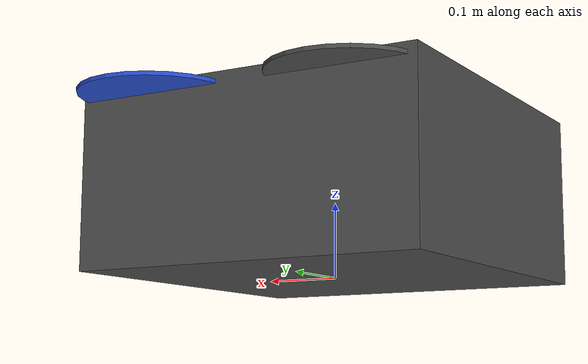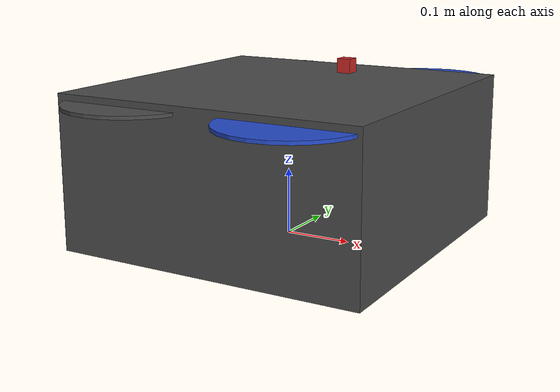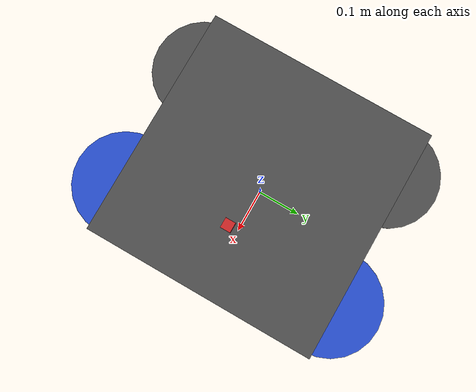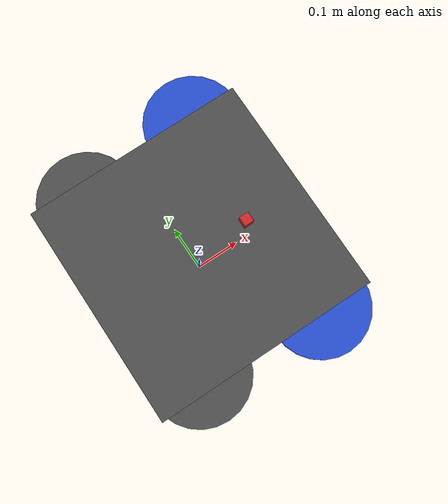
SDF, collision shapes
<?xml version='1.0'?>
<sdf version='1.5'>
  <model name='iris'>
    <pose>0 0 0.194923 0 0 0</pose>
    <link name="front_camera_link">
      <pose>0.1 -0.01 0.070 0 0 0</pose>
      <sensor name="front_camera" type="depth">
        <pose>0 0 0 0 0 0</pose> <!-- x y z roll pitch yaw，朝前 -->
        <camera>
          <horizontal_fov>2.0</horizontal_fov>
          <image>
            <width>640</width>
            <height>480</height>
          </image>
          <clip>
            <near>0.05</near>
            <far>50</far>
          </clip>
          <visualize>1</visualize>
        </camera>
        <always_on>1</always_on>
        <update_rate>30</update_rate>
        <visualize>1</visualize>
        <plugin name="front_camera_controller" filename="libgazebo_ros_depth_camera.so">
          <robotNamespace>roscam</robotNamespace>
          <alwaysOn>true</alwaysOn>
          <updateRate>0.0</updateRate>
          <cameraName>front_cam</cameraName>
          <imageTopicName>image_raw</imageTopicName>
          <cameraInfoTopicName>camera_info</cameraInfoTopicName>
          <frameName>/front_camera_link</frameName>
          <depthImageTopicName>depth/image_raw</depthImageTopicName>
          <pointCloudTopicName>depth/points</pointCloudTopicName>
          <hackBaseline>0.07</hackBaseline>
          <distortionK1>0.0</distortionK1>
          <distortionK2>0.0</distortionK2>
          <distortionK3>0.0</distortionK3>
          <distortionT1>0.0</distortionT1>
          <distortionT2>0.0</distortionT2>
        </plugin>
      </sensor>

      <inertial>
        <mass>0.0001</mass>  <!-- 小质量 -->
        <inertia>
          <ixx>0.00001</ixx>
          <ixy>0</ixy>
          <ixz>0</ixz>
          <iyy>0.00001</iyy>
          <iyz>0</iyz>
          <izz>0.00001</izz>
        </inertia>
      </inertial>

      <collision name="front_camera_collision">
        <geometry>
          <box>
            <size>0.02 0.02 0.02</size>  <!-- 小碰撞盒 -->
          </box>
        </geometry>
      </collision>
      <visual name="front_camera_visual">
        <geometry>
          <box>
            <size>0.02 0.02 0.02</size>
          </box>
        </geometry>
        <material>
          <script>
            <name>Gazebo/Red</name>
            <uri>file://media/materials/scripts/gazebo.material</uri>
          </script>
        </material>
      </visual>
    </link>
    <joint name="front_camera_joint" type="fixed">
      <parent>base_link</parent>
      <child>front_camera_link</child>
    </joint>

    <link name='base_link'>
      <velocity_decay>
        <linear>0.0</linear>
        <angular>0.0</angular>
      </velocity_decay>
      <inertial>
        <pose>0 0 0 0 0 0</pose>
        <mass>1.5</mass>
        <inertia>
          <ixx>0.008</ixx>
          <ixy>0</ixy>
          <ixz>0</ixz>
          <iyy>0.015</iyy>
          <iyz>0</iyz>
          <izz>0.017</izz>
        </inertia>
      </inertial>
      <collision name='base_link_collision'>
        <pose>0 0 -0.08 0 0 0</pose>
        <geometry>
          <box>
            <size>0.47 0.47 0.23</size>
          </box>
        </geometry>
        <surface>
          <contact>
            <ode>
              <max_vel>100.0</max_vel>
              <min_depth>0.001</min_depth>
            </ode>
          </contact>
          <friction>
            <ode>
              <mu>1000.0</mu>
              <mu2>1000.0</mu2>
            </ode>
          </friction>
        </surface>
      </collision>
      <visual name='base_link_visual'>
        <geometry>
          <mesh>
            <uri>model://iris_with_standoffs/meshes/iris.dae</uri>
          </mesh>
        </geometry>
        <material>
          <script>
            <name>Gazebo/DarkGrey</name>
            <uri>file://media/materials/scripts/gazebo.material</uri>
          </script>
        </material>
      </visual>

      <visual name='front_left_leg_visual'>
        <pose>0.123 0.22 -0.11 0 0 0</pose>
        <geometry>
          <cylinder>
            <radius>0.005</radius>
            <length>0.17</length>
          </cylinder>
        </geometry>
        <material>
          <script>
            <name>Gazebo/FlatBlack</name>
            <uri>file://media/materials/scripts/gazebo.material</uri>
          </script>
        </material>
      </visual>
      <visual name='front_right_leg_visual'>
        <pose>0.123 -0.22 -0.11 0 0 0</pose>
        <geometry>
          <cylinder>
            <radius>0.005</radius>
            <length>0.17</length>
          </cylinder>
        </geometry>
        <material>
          <script>
            <name>Gazebo/FlatBlack</name>
            <uri>file://media/materials/scripts/gazebo.material</uri>
          </script>
        </material>
      </visual>
      <visual name='rear_left_leg_visual'>
        <pose>-0.140 0.21 -0.11 0 0 0</pose>
        <geometry>
          <cylinder>
            <radius>0.005</radius>
            <length>0.17</length>
          </cylinder>
        </geometry>
        <material>
          <script>
            <name>Gazebo/FlatBlack</name>
            <uri>file://media/materials/scripts/gazebo.material</uri>
          </script>
        </material>
      </visual>
      <visual name='rear_right_leg_visual'>
        <pose>-0.140 -0.21 -0.11 0 0 0</pose>
        <geometry>
          <cylinder>
            <radius>0.005</radius>
            <length>0.17</length>
          </cylinder>
        </geometry>
        <material>
          <script>
            <name>Gazebo/FlatBlack</name>
            <uri>file://media/materials/scripts/gazebo.material</uri>
          </script>
        </material>
      </visual>
    </link>
    <link name='iris/ground_truth/odometry_sensorgt_link'>
      <pose>0 0 0 0 -0 0</pose>
      <inertial>
        <pose>0 0 0 0 -0 0</pose>
        <mass>0.15</mass>
        <inertia>
          <ixx>0.0001</ixx>
          <ixy>0</ixy>
          <ixz>0</ixz>
          <iyy>0.0002</iyy>
          <iyz>0</iyz>
          <izz>0.0002</izz>
        </inertia>
      </inertial>
    </link>
    <joint name='iris/ground_truth/odometry_sensorgt_joint' type='revolute'>
      <child>iris/ground_truth/odometry_sensorgt_link</child>
      <parent>base_link</parent>
      <axis>
        <xyz>0 0 1</xyz>
        <limit>
          <lower>0</lower>
          <upper>0</upper>
          <effort>0</effort>
          <velocity>0</velocity>
        </limit>
        <dynamics>
          <damping>1.0</damping>
        </dynamics>
        <use_parent_model_frame>1</use_parent_model_frame>
      </axis>
      <physics>
        <ode>
          <implicit_spring_damper>1</implicit_spring_damper>
        </ode>
      </physics>
    </joint>
    <link name='iris/imu_link'>
      <inertial>
        <pose>0 0 0 0 0 0</pose>
        <mass>0.15</mass>
        <inertia>
          <ixx>0.00001</ixx>
          <ixy>0</ixy>
          <ixz>0</ixz>
          <iyy>0.00002</iyy>
          <iyz>0</iyz>
          <izz>0.00002</izz>
        </inertia>
      </inertial>
      <sensor name="imu_sensor" type="imu">
        <pose>0 0 0 3.141593 0 0</pose>
        <always_on>1</always_on>
        <update_rate>1000.0</update_rate>
      </sensor>
    </link>
    <joint name='iris/imu_joint' type='revolute'>
      <child>iris/imu_link</child>
      <parent>base_link</parent>
      <axis>
        <xyz>0 0 1</xyz>
        <limit>
          <lower>0</lower>
          <upper>0</upper>
          <effort>0</effort>
          <velocity>0</velocity>
        </limit>
        <dynamics>
          <damping>1.0</damping>
        </dynamics>
        <use_parent_model_frame>1</use_parent_model_frame>
      </axis>
      <physics>
        <ode>
          <implicit_spring_damper>1</implicit_spring_damper>
        </ode>
      </physics>
    </joint>
    <link name='rotor_0'>
      <pose>0.13 -0.22 0.023 0 -0 0</pose>
      <inertial>
        <pose>0 0 0 0 -0 0</pose>
        <mass>0.025</mass>
        <inertia>
          <ixx>9.75e-06</ixx>
          <ixy>0</ixy>
          <ixz>0</ixz>
          <iyy>0.000166704</iyy>
          <iyz>0</iyz>
          <izz>0.000167604</izz>
        </inertia>
      </inertial>
      <collision name='rotor_0_collision'>
        <pose>0 0 0 0 -0 0</pose>
        <geometry>
          <cylinder>
            <length>0.005</length>
            <radius>0.1</radius>
          </cylinder>
        </geometry>
        <surface>
          <contact>
            <ode/>
          </contact>
          <friction>
            <ode/>
          </friction>
        </surface>
      </collision>
      <visual name='rotor_0_visual'>
        <pose>0 0 0 0 -0 0</pose>
        <geometry>
          <mesh>
            <scale>1 1 1</scale>
            <uri>model://iris_with_standoffs/meshes/iris_prop_ccw.dae</uri>
          </mesh>
        </geometry>
        <material>
          <script>
            <name>Gazebo/Blue</name>
            <uri>file://media/materials/scripts/gazebo.material</uri>
          </script>
        </material>
      </visual>
      <gravity>1</gravity>
      <velocity_decay/>
      <self_collide>0</self_collide>
    </link>
    <joint name='rotor_0_joint' type='revolute'>
      <child>rotor_0</child>
      <parent>base_link</parent>
      <axis>
        <xyz>0 0 1</xyz>
        <limit>
          <lower>-100</lower>
          <upper>100</upper>
           <effort>100.0</effort>
      <velocity>1000.0</velocity>
        </limit>
        <dynamics>
          <damping>0.004</damping>
        </dynamics>
        <use_parent_model_frame>1</use_parent_model_frame>
      </axis>
      <physics>
        <ode>
          <implicit_spring_damper>1</implicit_spring_damper>
        </ode>
      </physics>
    </joint>
    <link name='rotor_1'>
      <pose>-0.13 0.2 0.023 0 -0 0</pose>
      <inertial>
        <pose>0 0 0 0 -0 0</pose>
        <mass>0.025</mass>
        <inertia>
          <ixx>9.75e-06</ixx>
          <ixy>0</ixy>
          <ixz>0</ixz>
          <iyy>0.000166704</iyy>
          <iyz>0</iyz>
          <izz>0.000167604</izz>
        </inertia>
      </inertial>
      <collision name='rotor_1_collision'>
        <pose>0 0 0 0 -0 0</pose>
        <geometry>
          <cylinder>
            <length>0.005</length>
            <radius>0.1</radius>
          </cylinder>
        </geometry>
        <surface>
          <contact>
            <ode/>
          </contact>
          <friction>
            <ode/>
          </friction>
        </surface>
      </collision>
      <visual name='rotor_1_visual'>
        <pose>0 0 0 0 -0 0</pose>
        <geometry>
          <mesh>
            <scale>1 1 1</scale>
            <uri>model://iris_with_standoffs/meshes/iris_prop_ccw.dae</uri>
          </mesh>
        </geometry>
        <material>
          <script>
            <name>Gazebo/DarkGrey</name>
            <uri>file://media/materials/scripts/gazebo.material</uri>
          </script>
        </material>
      </visual>
      <gravity>1</gravity>
      <velocity_decay/>
      <self_collide>0</self_collide>
    </link>
    <joint name='rotor_1_joint' type='revolute'>
      <child>rotor_1</child>
      <parent>base_link</parent>
      <axis>
        <xyz>0 0 1</xyz>
        <limit>
          <lower>-100</lower>
          <upper>100</upper>
          <effort>100.0</effort>
          <velocity>1000.0</velocity>
        </limit>
        <dynamics>
          <damping>0.004</damping>
        </dynamics>
        <use_parent_model_frame>1</use_parent_model_frame>
      </axis>
      <physics>
        <ode>
          <implicit_spring_damper>1</implicit_spring_damper>
        </ode>
      </physics>
    </joint>
    <link name='rotor_2'>
      <pose>0.13 0.22 0.023 0 -0 0</pose>
      <inertial>
        <pose>0 0 0 0 -0 0</pose>
        <mass>0.025</mass>
        <inertia>
          <ixx>9.75e-06</ixx>
          <ixy>0</ixy>
          <ixz>0</ixz>
          <iyy>0.000166704</iyy>
          <iyz>0</iyz>
          <izz>0.000167604</izz>
        </inertia>
      </inertial>
      <collision name='rotor_2_collision'>
        <pose>0 0 0 0 -0 0</pose>
        <geometry>
          <cylinder>
            <length>0.005</length>
            <radius>0.1</radius>
          </cylinder>
        </geometry>
        <surface>
          <contact>
            <ode/>
          </contact>
          <friction>
            <ode/>
          </friction>
        </surface>
      </collision>
      <visual name='rotor_2_visual'>
        <pose>0 0 0 0 -0 0</pose>
        <geometry>
          <mesh>
            <scale>1 1 1</scale>
            <uri>model://iris_with_standoffs/meshes/iris_prop_cw.dae</uri>
          </mesh>
        </geometry>
        <material>
          <script>
            <name>Gazebo/Blue</name>
            <uri>file://media/materials/scripts/gazebo.material</uri>
          </script>
        </material>
      </visual>
      <gravity>1</gravity>
      <velocity_decay/>
      <self_collide>0</self_collide>
    </link>
    <joint name='rotor_2_joint' type='revolute'>
      <child>rotor_2</child>
      <parent>base_link</parent>
      <axis>
        <xyz>0 0 1</xyz>
        <limit>
          <lower>-100</lower>
          <upper>100</upper>
          <effort>100.0</effort>
          <velocity>1000.0</velocity>
        </limit>
        <dynamics>
          <damping>0.004</damping>
        </dynamics>
        <use_parent_model_frame>1</use_parent_model_frame>
      </axis>
      <physics>
        <ode>
          <implicit_spring_damper>1</implicit_spring_damper>
        </ode>
      </physics>
    </joint>
    <link name='rotor_3'>
      <pose>-0.13 -0.2 0.023 0 -0 0</pose>
      <inertial>
        <pose>0 0 0 0 -0 0</pose>
        <mass>0.025</mass>
        <inertia>
          <ixx>9.75e-06</ixx>
          <ixy>0</ixy>
          <ixz>0</ixz>
          <iyy>0.000166704</iyy>
          <iyz>0</iyz>
          <izz>0.000167604</izz>
        </inertia>
      </inertial>
      <collision name='rotor_3_collision'>
        <pose>0 0 0 0 -0 0</pose>
        <geometry>
          <cylinder>
            <length>0.005</length>
            <radius>0.1</radius>
          </cylinder>
        </geometry>
        <surface>
          <contact>
            <ode/>
          </contact>
          <friction>
            <ode/>
          </friction>
        </surface>
      </collision>
      <visual name='rotor_3_visual'>
        <pose>0 0 0 0 -0 0</pose>
        <geometry>
          <mesh>
            <scale>1 1 1</scale>
            <uri>model://iris_with_standoffs/meshes/iris_prop_cw.dae</uri>
          </mesh>
        </geometry>
        <material>
          <script>
            <name>Gazebo/DarkGrey</name>
            <uri>file://media/materials/scripts/gazebo.material</uri>
          </script>
        </material>
      </visual>
      <gravity>1</gravity>
      <velocity_decay/>
      <self_collide>0</self_collide>
    </link>
    <joint name='rotor_3_joint' type='revolute'>
      <child>rotor_3</child>
      <parent>base_link</parent>
      <axis>
        <xyz>0 0 1</xyz>
        <limit>
          <lower>-100</lower>
          <upper>100</upper>
           <effort>100.0</effort>
      <velocity>1000.0</velocity>
        </limit>
        <dynamics>
          <damping>0.004</damping>
        </dynamics>
        <use_parent_model_frame>1</use_parent_model_frame>
      </axis>
      <physics>
        <ode>
          <implicit_spring_damper>1</implicit_spring_damper>
        </ode>
      </physics>
    </joint>
    <static>0</static>
  </model>
</sdf>
